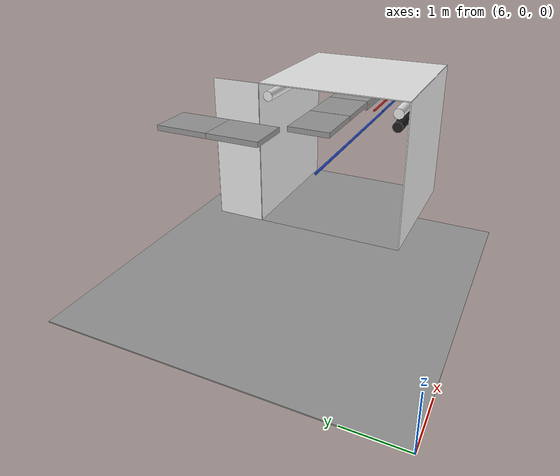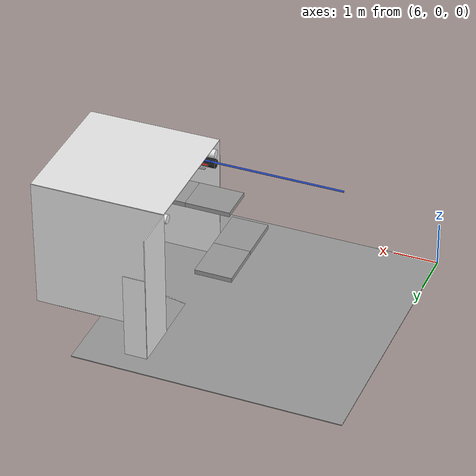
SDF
<sdf version="1.6">
 <world name="default">
  <model name="ceiling_1_3_2_2_1">
   <pose>9.0 5.0 2.55 0.0 0.0 3.14</pose>
   <link name="link_1">
    <visual name="visual">
     <geometry><box><size>0.8 1 0.1</size></box></geometry>
     <material>
      <script><uri>file://media/materials/scripts/gazebo.material</uri><name>Gazebo/Grey</name></script>
     </material>
    </visual>
    <collision name="collision"><geometry><box><size>0.8 1 0.1</size></box></geometry></collision>
   </link>
   <static>1</static>
  </model>
  <model name="wall_left_front_left_3_2_0_1">
   <static>1</static>
   <pose>10.5 5.0 1.5 0.0 0.0 4.71</pose>
   <link name="link">
    <collision name="collision"><geometry><box><size>1.0 0.02 3.0</size></box></geometry></collision>
    <visual name="visual">
     <material>
      <script><name>Gazebo/White</name><uri>file://media/materials/scripts/gazebo.material</uri></script>
     </material>
     <geometry><box><size>1.0 0.02 3.0</size></box></geometry>
    </visual>
   </link>
  </model>
  <model name="wall_left_inside_left_3_2_0_1">
   <static>1</static>
   <pose>10.75 5.5 1.0 0.0 0.0 3.14</pose>
   <link name="link">
    <collision name="collision"><geometry><box><size>0.5 0.02 2</size></box></geometry></collision>
    <visual name="visual">
     <material>
      <script><name>Gazebo/White</name><uri>file://media/materials/scripts/gazebo.material</uri></script>
     </material>
     <geometry><box><size>0.5 0.02 2</size></box></geometry>
    </visual>
   </link>
  </model>
  <model name="ceiling_1_3_1_0_3">
   <pose>9.0 4.0 2.55 0.0 0.0 3.14</pose>
   <link name="link_1">
    <visual name="visual">
     <geometry><box><size>0.8 1 0.1</size></box></geometry>
     <material>
      <script><uri>file://media/materials/scripts/gazebo.material</uri><name>Gazebo/Grey</name></script>
     </material>
    </visual>
    <collision name="collision"><geometry><box><size>0.8 1 0.1</size></box></geometry></collision>
   </link>
   <static>1</static>
  </model>
  <model name="ceiling_1_3_1_1_3">
   <pose>10.0 3.0 2.55 0.0 0.0 4.71</pose>
   <link name="link_1">
    <visual name="visual">
     <geometry><box><size>0.8 1 0.1</size></box></geometry>
     <material>
      <script><uri>file://media/materials/scripts/gazebo.material</uri><name>Gazebo/Grey</name></script>
     </material>
    </visual>
    <collision name="collision"><geometry><box><size>0.8 1 0.1</size></box></geometry></collision>
   </link>
   <static>1</static>
  </model>
  <model name="blue_pipe_right_1_3_1_0_3">
   <static>1</static>
   <pose>9.0 3.0 2.76 0.0 0.0 4.71</pose>
   <link name="link_0">
    <visual name="visual">
     <pose>1 0 0 1.57 0 0</pose>
     <geometry><cylinder><radius>0.02</radius><length>3.0</length></cylinder></geometry>
     <material>
      <script><uri>file://media/materials/scripts/gazebo.material</uri><name>Gazebo/Blue</name></script>
     </material>
    </visual>
    <collision name="collision">
     <pose>1 0 0 1.57 0 0</pose>
     <geometry><cylinder><radius>0.02</radius><length>3.0</length></cylinder></geometry>
    </collision>
   </link>
  </model>
  <model name="wall_bottom_3_1_0_3">
   <static>1</static>
   <pose>9.0 3.0 0.0 0.0 0.0 3.14</pose>
   <link name="link">
    <collision name="collision"><geometry><box><size>6.0 6.0 0.02</size></box></geometry></collision>
    <visual name="visual">
     <material>
      <script><name>Gazebo/Grey</name><uri>file://media/materials/scripts/gazebo.material</uri></script>
     </material>
     <geometry><box><size>6.0 6.0 0.02</size></box></geometry>
    </visual>
   </link>
  </model>
  <model name="wall_right_4_1_0_4">
   <static>1</static>
   <pose>12.0 1.5 1.5 0.0 0.0 0.0</pose>
   <link name="link">
    <collision name="collision"><geometry><box><size>3.0 0.02 3.0</size></box></geometry></collision>
    <visual name="visual">
     <material>
      <script><name>Gazebo/White</name><uri>file://media/materials/scripts/gazebo.material</uri></script>
     </material>
     <geometry><box><size>3.0 0.02 3.0</size></box></geometry>
    </visual>
   </link>
  </model>
  <model name="wall_left_4_1_0_4">
   <static>1</static>
   <pose>12.0 4.5 1.5 0.0 0.0 0.0</pose>
   <link name="link">
    <collision name="collision"><geometry><box><size>3.0 0.02 3.0</size></box></geometry></collision>
    <visual name="visual">
     <material>
      <script><name>Gazebo/White</name><uri>file://media/materials/scripts/gazebo.material</uri></script>
     </material>
     <geometry><box><size>3.0 0.02 3.0</size></box></geometry>
    </visual>
   </link>
  </model>
  <model name="wall_top_4_1_0_4">
   <static>1</static>
   <pose>12.0 3.0 3.0 1.57 0.0 -1.57</pose>
   <link name="link">
    <collision name="collision"><geometry><box><size>3.0 0.02 3.0</size></box></geometry></collision>
    <visual name="visual">
     <material>
      <script><name>Gazebo/White</name><uri>file://media/materials/scripts/gazebo.material</uri></script>
     </material>
     <geometry><box><size>3.0 0.02 3.0</size></box></geometry>
    </visual>
   </link>
  </model>
  <model name="ceiling_1_4_1_0_4">
   <pose>12.0 3.0 2.55 0.0 0.0 -1.57</pose>
   <link name="link_1">
    <visual name="visual">
     <geometry><box><size>0.8 1 0.1</size></box></geometry>
     <material>
      <script><uri>file://media/materials/scripts/gazebo.material</uri><name>Gazebo/Grey</name></script>
     </material>
    </visual>
    <collision name="collision"><geometry><box><size>0.8 1 0.1</size></box></geometry></collision>
   </link>
   <static>1</static>
  </model>
  <model name="ceiling_1_4_1_1_4">
   <pose>11.0 3.0 2.55 0.0 0.0 -1.57</pose>
   <link name="link_1">
    <visual name="visual">
     <geometry><box><size>0.8 1 0.1</size></box></geometry>
     <material>
      <script><uri>file://media/materials/scripts/gazebo.material</uri><name>Gazebo/Grey</name></script>
     </material>
    </visual>
    <collision name="collision"><geometry><box><size>0.8 1 0.1</size></box></geometry></collision>
   </link>
   <static>1</static>
  </model>
  <model name="ceiling_1_4_1_2_4">
   <pose>13.0 3.0 2.55 0.0 0.0 -1.57</pose>
   <link name="link_1">
    <visual name="visual">
     <geometry><box><size>0.8 1 0.1</size></box></geometry>
     <material>
      <script><uri>file://media/materials/scripts/gazebo.material</uri><name>Gazebo/Grey</name></script>
     </material>
    </visual>
    <collision name="collision"><geometry><box><size>0.8 1 0.1</size></box></geometry></collision>
   </link>
   <static>1</static>
  </model>
  <model name="white_pipe_left_4_1_0_4">
   <static>1</static>
   <pose>12.0 3.0 2.76 0.0 0.0 -1.57</pose>
   <link name="link_0">
    <visual name="visual">
     <pose>-1.3 0 0 1.57 0 0</pose>
     <geometry><cylinder><radius>0.1</radius><length>3.0</length></cylinder></geometry>
     <material>
      <script><uri>file://media/materials/scripts/gazebo.material</uri><name>Gazebo/White</name></script>
     </material>
    </visual>
    <collision name="collision">
     <pose>-1.3 0 0 1.57 0 0</pose>
     <geometry><cylinder><radius>0.1</radius><length>3.0</length></cylinder></geometry>
    </collision>
   </link>
  </model>
  <model name="white_pipe_right_4_1_0_4">
   <static>1</static>
   <pose>12.0 3.0 2.76 0.0 0.0 -1.57</pose>
   <link name="link_0">
    <visual name="visual">
     <pose>1.3 0 0 1.57 0 0</pose>
     <geometry><cylinder><radius>0.1</radius><length>3.0</length></cylinder></geometry>
     <material>
      <script><uri>file://media/materials/scripts/gazebo.material</uri><name>Gazebo/White</name></script>
     </material>
    </visual>
    <collision name="collision">
     <pose>1.3 0 0 1.57 0 0</pose>
     <geometry><cylinder><radius>0.1</radius><length>3.0</length></cylinder></geometry>
    </collision>
   </link>
  </model>
  <model name="black_pipe_right_4_1_0_4">
   <static>1</static>
   <pose>12.0 3.0 2.76 0.0 0.0 -1.57</pose>
   <link name="link_0">
    <visual name="visual">
     <pose>1.3 0 -0.25 1.57 0 0</pose>
     <geometry><cylinder><radius>0.1</radius><length>3.0</length></cylinder></geometry>
     <material>
      <script><uri>file://media/materials/scripts/gazebo.material</uri><name>Gazebo/Black</name></script>
     </material>
    </visual>
    <collision name="collision">
     <pose>1.3 0 -0.25 1.57 0 0</pose>
     <geometry><cylinder><radius>0.1</radius><length>3.0</length></cylinder></geometry>
    </collision>
   </link>
  </model>
  <model name="grey_pipe_right_4_1_0_4">
   <static>1</static>
   <pose>12.0 3.0 2.76 0.0 0.0 -1.57</pose>
   <link name="link_0">
    <visual name="visual">
     <pose>0.7 0 0 1.57 0 0</pose>
     <geometry><cylinder><radius>0.02</radius><length>3.0</length></cylinder></geometry>
     <material>
      <script><uri>file://media/materials/scripts/gazebo.material</uri><name>Gazebo/Grey</name></script>
     </material>
    </visual>
    <collision name="collision">
     <pose>0.7 0 0 1.57 0 0</pose>
     <geometry><cylinder><radius>0.02</radius><length>3.0</length></cylinder></geometry>
    </collision>
   </link>
  </model>
  <model name="red_pipe_right_4_1_0_4">
   <static>1</static>
   <pose>12.0 3.0 2.76 0.0 0.0 -1.57</pose>
   <link name="link_0">
    <visual name="visual">
     <pose>0.85 0 0 1.57 0 0</pose>
     <geometry><cylinder><radius>0.02</radius><length>3.0</length></cylinder></geometry>
     <material>
      <script><uri>file://media/materials/scripts/gazebo.material</uri><name>Gazebo/Red</name></script>
     </material>
    </visual>
    <collision name="collision">
     <pose>0.85 0 0 1.57 0 0</pose>
     <geometry><cylinder><radius>0.02</radius><length>3.0</length></cylinder></geometry>
    </collision>
   </link>
  </model>
  <model name="blue_pipe_right_4_1_0_4">
   <static>1</static>
   <pose>12.0 3.0 2.76 0.0 0.0 -1.57</pose>
   <link name="link_0">
    <visual name="visual">
     <pose>1 0 0 1.57 0 0</pose>
     <geometry><cylinder><radius>0.02</radius><length>3.0</length></cylinder></geometry>
     <material>
      <script><uri>file://media/materials/scripts/gazebo.material</uri><name>Gazebo/Blue</name></script>
     </material>
    </visual>
    <collision name="collision">
     <pose>1 0 0 1.57 0 0</pose>
     <geometry><cylinder><radius>0.02</radius><length>3.0</length></cylinder></geometry>
    </collision>
   </link>
  </model>
  <model name="wall_bottom_4_1_0_4">
   <static>1</static>
   <pose>12.0 3.0 0.0 0.0 0.0 -1.57</pose>
   <link name="link">
    <collision name="collision"><geometry><box><size>3.0 3.0 0.02</size></box></geometry></collision>
    <visual name="visual">
     <material>
      <script><name>Gazebo/Grey</name><uri>file://media/materials/scripts/gazebo.material</uri></script>
     </material>
     <geometry><box><size>3.0 3.0 0.02</size></box></geometry>
    </visual>
   </link>
  </model>
 </world>
</sdf>
